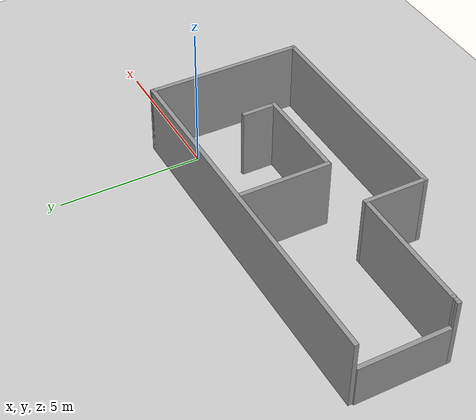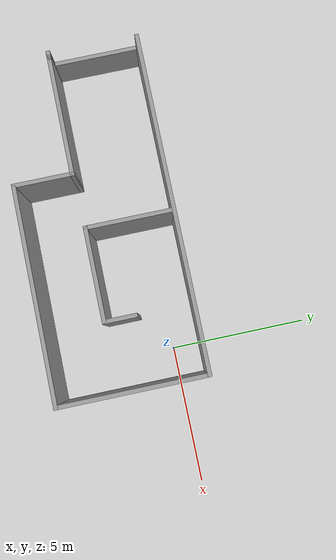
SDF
<sdf version="1.7">
 <world name="default">
  <light name="sun" type="directional">
   <pose>0 0 10 0 -0 0</pose>
   <diffuse>0.8 0.8 0.8 1</diffuse>
   <specular>0.2 0.2 0.2 1</specular>
   <attenuation>
    <range>1000</range>
    <constant>0.9</constant>
    <linear>0.01</linear>
    <quadratic>0.001</quadratic>
   </attenuation>
   <direction>-0.5 0.1 -0.9</direction>
   <spot><inner_angle>0</inner_angle><outer_angle>0</outer_angle><falloff>0</falloff></spot>
  </light>
  <model name="ground_plane">
   <static>1</static>
   <link name="link">
    <collision name="collision">
     <geometry><plane><normal>0 0 1</normal><size>100 100</size></plane></geometry>
     <surface><friction><ode><mu>100</mu><mu2>50</mu2></ode></friction></surface>
    </collision>
    <visual name="visual">
     <cast_shadows>0</cast_shadows>
     <geometry><plane><normal>0 0 1</normal><size>100 100</size></plane></geometry>
     <material>
      <script><uri>file://media/materials/scripts/gazebo.material</uri><name>Gazebo/Grey</name></script>
     </material>
    </visual>
   </link>
  </model>
  <gravity>0 0 -9.8</gravity>
  <magnetic_field>6e-06 2.3e-05 -4.2e-05</magnetic_field>
  <atmosphere type="adiabatic"/>
  <physics type="ode">
   <max_step_size>0.001</max_step_size>
   <real_time_factor>1</real_time_factor>
   <real_time_update_rate>1000</real_time_update_rate>
  </physics>
  <scene><ambient>0.4 0.4 0.4 1</ambient><background>0.7 0.7 0.7 1</background><shadows>1</shadows></scene>
  <audio><device>default</device></audio>
  <spherical_coordinates>
   <surface_model>EARTH_WGS84</surface_model>
   <latitude_deg>0</latitude_deg>
   <longitude_deg>0</longitude_deg>
   <elevation>0</elevation>
   <heading_deg>0</heading_deg>
  </spherical_coordinates>
  <model name="walls2">
   <pose>-5.05554 -1.01322 0 0 -0 0</pose>
   <link name="Wall_1">
    <collision name="Wall_1_Collision">
     <geometry><box><size>12.5 0.15 2.5</size></box></geometry>
     <pose>0 0 1.25 0 -0 0</pose>
    </collision>
    <visual name="Wall_1_Visual">
     <pose>0 0 1.25 0 -0 0</pose>
     <geometry><box><size>12.5 0.15 2.5</size></box></geometry>
     <material>
      <script><uri>file://media/materials/scripts/gazebo.material</uri><name>Gazebo/Grey</name></script>
      <ambient>1 1 1 1</ambient>
     </material>
     <meta><layer>0</layer></meta>
    </visual>
    <pose>0.025 2.0325 0 0 -0 0</pose>
   </link>
   <link name="Wall_12">
    <collision name="Wall_12_Collision">
     <geometry><box><size>3.25 0.15 2.5</size></box></geometry>
     <pose>0 0 1.25 0 -0 0</pose>
    </collision>
    <visual name="Wall_12_Visual">
     <pose>0 0 1.25 0 -0 0</pose>
     <geometry><box><size>3.25 0.15 2.5</size></box></geometry>
     <material>
      <script><uri>file://media/materials/scripts/gazebo.material</uri><name>Gazebo/Grey</name></script>
      <ambient>1 1 1 1</ambient>
     </material>
     <meta><layer>0</layer></meta>
    </visual>
    <pose>0.34 0.4125 0 0 -0 -1.5708</pose>
   </link>
   <link name="Wall_13">
    <collision name="Wall_13_Collision">
     <geometry><box><size>3.5 0.15 2.5</size></box></geometry>
     <pose>0 0 1.25 0 -0 0</pose>
    </collision>
    <visual name="Wall_13_Visual">
     <pose>0 0 1.25 0 -0 0</pose>
     <geometry><box><size>3.5 0.15 2.5</size></box></geometry>
     <material>
      <script><uri>file://media/materials/scripts/gazebo.material</uri><name>Gazebo/Grey</name></script>
      <ambient>1 1 1 1</ambient>
     </material>
     <meta><layer>0</layer></meta>
    </visual>
    <pose>2.015 -1.1375 0 0 -0 0</pose>
   </link>
   <link name="Wall_14">
    <collision name="Wall_14_Collision">
     <geometry><box><size>1.25 0.15 2.5</size></box></geometry>
     <pose>0 0 1.25 0 -0 0</pose>
    </collision>
    <visual name="Wall_14_Visual">
     <pose>0 0 1.25 0 -0 0</pose>
     <geometry><box><size>1.25 0.15 2.5</size></box></geometry>
     <material>
      <script><uri>file://media/materials/scripts/gazebo.material</uri><name>Gazebo/Grey</name></script>
      <ambient>1 1 1 1</ambient>
     </material>
     <meta><layer>0</layer></meta>
    </visual>
    <pose>3.69 -0.5875 0 0 -0 1.5708</pose>
   </link>
   <link name="Wall_2">
    <collision name="Wall_2_Collision">
     <geometry><box><size>5.5 0.15 2.5</size></box></geometry>
     <pose>0 0 1.25 0 -0 0</pose>
    </collision>
    <visual name="Wall_2_Visual">
     <pose>0 0 1.25 0 -0 0</pose>
     <geometry><box><size>5.5 0.15 2.5</size></box></geometry>
     <material>
      <script><uri>file://media/materials/scripts/gazebo.material</uri><name>Gazebo/Grey</name></script>
      <ambient>1 1 1 1</ambient>
     </material>
     <meta><layer>0</layer></meta>
    </visual>
    <pose>6.2 -0.6425 0 0 -0 -1.5708</pose>
   </link>
   <link name="Wall_3">
    <collision name="Wall_3_Collision">
     <geometry><box><size>8 0.15 2.5</size></box></geometry>
     <pose>0 0 1.25 0 -0 0</pose>
    </collision>
    <visual name="Wall_3_Visual">
     <pose>0 0 1.25 0 -0 0</pose>
     <geometry><box><size>8 0.15 2.5</size></box></geometry>
     <material>
      <script><uri>file://media/materials/scripts/gazebo.material</uri><name>Gazebo/Grey</name></script>
      <ambient>1 1 1 1</ambient>
     </material>
     <meta><layer>0</layer></meta>
    </visual>
    <pose>2.275 -3.3175 0 0 -0 3.14159</pose>
   </link>
   <link name="Wall_4">
    <collision name="Wall_4_Collision">
     <geometry><box><size>2.25 0.15 2.5</size></box></geometry>
     <pose>0 0 1.25 0 -0 0</pose>
    </collision>
    <visual name="Wall_4_Visual">
     <pose>0 0 1.25 0 -0 0</pose>
     <geometry><box><size>2.25 0.15 2.5</size></box></geometry>
     <material>
      <script><uri>file://media/materials/scripts/gazebo.material</uri><name>Gazebo/Grey</name></script>
      <ambient>1 1 1 1</ambient>
     </material>
     <meta><layer>0</layer></meta>
    </visual>
    <pose>-1.65 -2.2675 0 0 -0 1.5708</pose>
   </link>
   <link name="Wall_5">
    <collision name="Wall_5_Collision">
     <geometry><box><size>4.5 0.15 2.5</size></box></geometry>
     <pose>0 0 1.25 0 -0 0</pose>
    </collision>
    <visual name="Wall_5_Visual">
     <pose>0 0 1.25 0 -0 0</pose>
     <geometry><box><size>4.5 0.15 2.5</size></box></geometry>
     <material>
      <script><uri>file://media/materials/scripts/gazebo.material</uri><name>Gazebo/Grey</name></script>
      <ambient>1 1 1 1</ambient>
     </material>
     <meta><layer>0</layer></meta>
    </visual>
    <pose>-3.825 -1.2175 0 0 -0 3.14159</pose>
   </link>
   <link name="Wall_6">
    <collision name="Wall_6_Collision">
     <geometry><box><size>0.15 0.15 2.5</size></box></geometry>
     <pose>0 0 1.25 0 -0 0</pose>
    </collision>
    <visual name="Wall_6_Visual">
     <pose>0 0 1.25 0 -0 0</pose>
     <geometry><box><size>0.15 0.15 2.5</size></box></geometry>
     <material>
      <script><uri>file://media/materials/scripts/gazebo.material</uri><name>Gazebo/Grey</name></script>
      <ambient>1 1 1 1</ambient>
     </material>
     <meta><layer>0</layer></meta>
    </visual>
    <pose>-6 -1.2175 0 0 -0 0</pose>
   </link>
   <link name="Wall_7">
    <collision name="Wall_7_Collision">
     <geometry><box><size>0.25 0.15 2.5</size></box></geometry>
     <pose>0 0 1.25 0 -0 0</pose>
    </collision>
    <visual name="Wall_7_Visual">
     <pose>0 0 1.25 0 -0 0</pose>
     <geometry><box><size>0.25 0.15 2.5</size></box></geometry>
     <material>
      <script><uri>file://media/materials/scripts/gazebo.material</uri><name>Gazebo/Grey</name></script>
      <ambient>1 1 1 1</ambient>
     </material>
     <meta><layer>0</layer></meta>
    </visual>
    <pose>-6.05 -1.2175 0 0 -0 3.14159</pose>
   </link>
   <link name="Wall_8">
    <collision name="Wall_8_Collision">
     <geometry><box><size>0.25 0.15 2.5</size></box></geometry>
     <pose>0 0 1.25 0 -0 0</pose>
    </collision>
    <visual name="Wall_8_Visual">
     <pose>0 0 1.25 0 -0 0</pose>
     <geometry><box><size>0.25 0.15 2.5</size></box></geometry>
     <material>
      <script><uri>file://media/materials/scripts/gazebo.material</uri><name>Gazebo/Grey</name></script>
      <ambient>1 1 1 1</ambient>
     </material>
     <meta><layer>0</layer></meta>
    </visual>
    <pose>-6.15 -1.2175 0 0 -0 3.14159</pose>
   </link>
   <link name="Wall_9">
    <collision name="Wall_9_Collision">
     <geometry><box><size>3.25 0.15 1.5</size></box></geometry>
     <pose>0 0 0.75 0 -0 0</pose>
    </collision>
    <visual name="Wall_9_Visual">
     <pose>0 0 0.75 0 -0 0</pose>
     <geometry><box><size>3.25 0.15 1.5</size></box></geometry>
     <material>
      <script><uri>file://media/materials/scripts/gazebo.material</uri><name>Gazebo/Grey</name></script>
      <ambient>1 1 1 1</ambient>
     </material>
     <meta><layer>0</layer></meta>
    </visual>
    <pose>-6.2 0.3325 0 0 -0 1.5708</pose>
   </link>
   <static>1</static>
  </model>
 </world>
</sdf>
